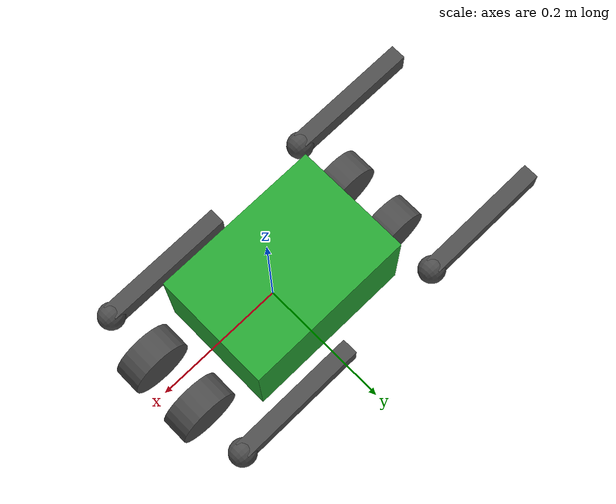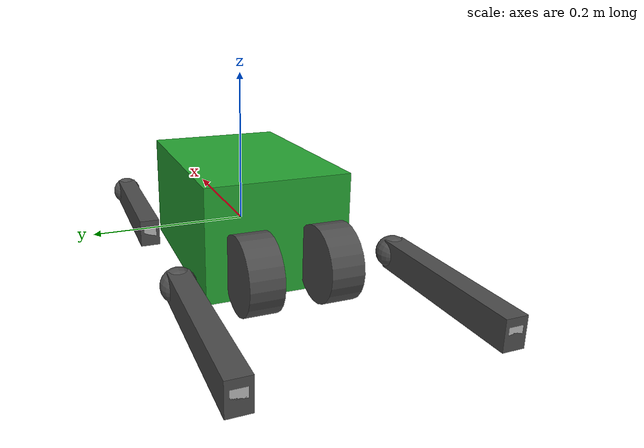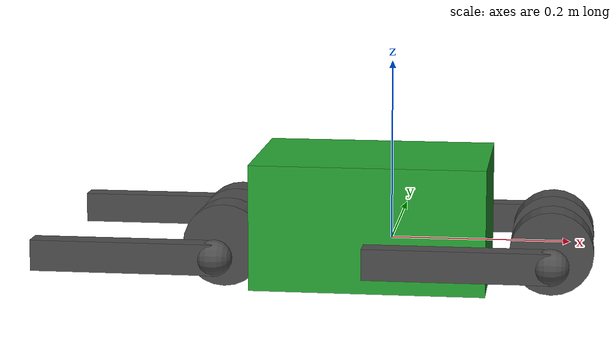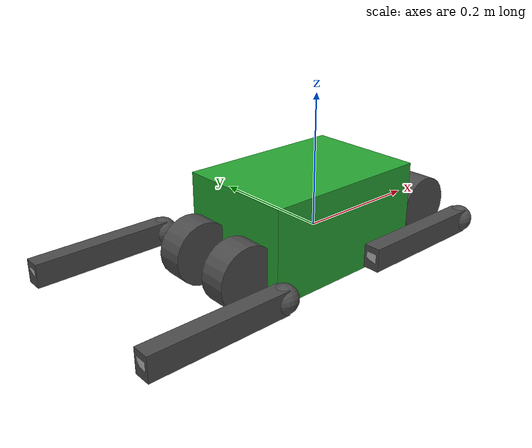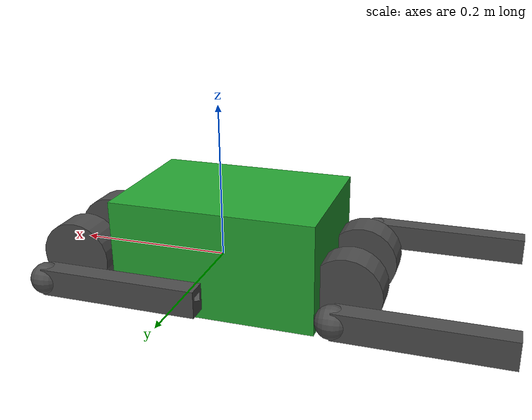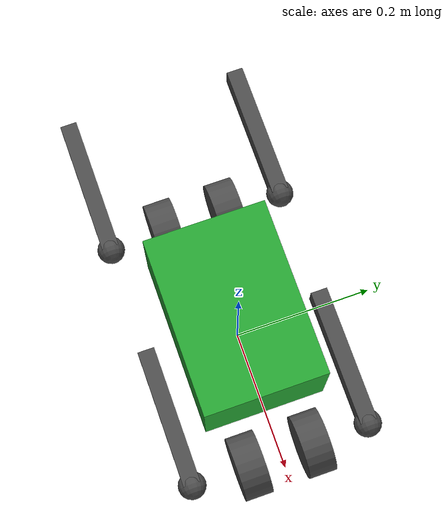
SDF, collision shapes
<sdf version='1.6'>
  <model name='ylo2_description'>
    <link name='body'>
      <inertial>
        <pose>0.0325 0.007369 0.033157 0 -0 0</pose>
        <mass>4.077</mass>
        <inertia>
          <ixx>0.0199227</ixx>
          <ixy>-3.01296e-05</ixy>
          <ixz>-0.000376678</ixz>
          <iyy>0.078297</iyy>
          <iyz>-1.27744e-05</iyz>
          <izz>0.0842236</izz>
        </inertia>
      </inertial>
      <collision name='body_fixed_joint_lump__trunk_collision'>
        <pose>-0.02 0.003 0.024 0 -0 0</pose>
        <geometry>
          <box>
            <size>0.26 0.18 0.14</size>
          </box>
        </geometry>
        <surface>
          <contact>
            <ode>
              <kp>1e+06</kp>
              <kd>1</kd>
            </ode>
          </contact>
          <friction>
            <ode>
              <mu>0.2</mu>
              <mu2>0.2</mu2>
            </ode>
          </friction>
        </surface>
      </collision>
      <collision name='body_fixed_joint_lump__imu_link_collision_1'>
        <pose>0 0 0 0 -0 0</pose>
        <geometry>
          <box>
            <size>0.001 0.001 0.001</size>
          </box>
        </geometry>
        <surface>
          <contact>
            <ode/>
          </contact>
          <friction>
            <ode>
              <mu>0.2</mu>
              <mu2>0.2</mu2>
            </ode>
          </friction>
        </surface>
      </collision>
      <visual name='body_visual'>
        <pose>0 0 0 0 -0 0</pose>
        <geometry>
          <box>
            <size>0.001 0.001 0.001</size>
          </box>
        </geometry>
        <material>
          <script>
            <name>Gazebo/Green</name>
            <uri>file://media/materials/scripts/gazebo.material</uri>
          </script>
        </material>
      </visual>
      <visual name='body_visual_visual_1'>
        <pose>0 0 0 0 -0 0</pose>
        <geometry>
          <mesh>
            <scale>1 1 1</scale>
            <uri>model://ylo2_description/meshes/body/textured/ylo2_textured_body.dae</uri>
          </mesh>
        </geometry>
        <material>
          <script>
            <name>Gazebo/Green</name>
            <uri>file://media/materials/scripts/gazebo.material</uri>
          </script>
        </material>
      </visual>
      <visual name='body_fixed_joint_lump__abad_motors_visual_2'>
        <pose>0 0 0 0 -0 0</pose>
        <geometry>
          <mesh>
            <scale>1 1 1</scale>
            <uri>model://ylo2_description/meshes/body/textured/ylo2_textured_abad_motors.dae</uri>
          </mesh>
        </geometry>
      </visual>
      <visual name='body_fixed_joint_lump__accessories_visual_3'>
        <pose>0 0 0 0 -0 0</pose>
        <geometry>
          <mesh>
            <scale>1 1 1</scale>
            <uri>model://ylo2_description/meshes/body/textured/accessories.dae</uri>
          </mesh>
        </geometry>
      </visual>
      <visual name='body_fixed_joint_lump__battery_visual_4'>
        <pose>0 0 0 0 -0 0</pose>
        <geometry>
          <mesh>
            <scale>1 1 1</scale>
            <uri>model://ylo2_description/meshes/body/battery.stl</uri>
          </mesh>
        </geometry>
      </visual>
      <visual name='body_fixed_joint_lump__covers_visual_5'>
        <pose>0 0 0 0 -0 0</pose>
        <geometry>
          <mesh>
            <scale>1 1 1</scale>
            <uri>model://ylo2_description/meshes/body/textured/ylo2_textured_cover.dae</uri>
          </mesh>
        </geometry>
      </visual>
      <visual name='body_fixed_joint_lump__d435_visual_6'>
        <pose>0 0.003 0 0 -0 0</pose>
        <geometry>
          <mesh>
            <scale>1 1 1</scale>
            <uri>model://ylo2_description/meshes/body/textured/ylo2_d435_textured.dae</uri>
          </mesh>
        </geometry>
      </visual>
      <visual name='body_fixed_joint_lump__imu_link_visual_7'>
        <pose>0 0 0 0 -0 0</pose>
        <geometry>
          <box>
            <size>0.001 0.001 0.001</size>
          </box>
        </geometry>
        <material>
          <script>
            <name>Gazebo/Red</name>
            <uri>file://media/materials/scripts/gazebo.material</uri>
          </script>
        </material>
      </visual>
      <visual name='body_fixed_joint_lump__t265_visual_8'>
        <pose>0.002 0.0025 0 0 -0 0</pose>
        <geometry>
          <mesh>
            <scale>1 1.06 1.04</scale>
            <uri>model://ylo2_description/meshes/body/textured/ylo2_t265_textured.dae</uri>
          </mesh>
        </geometry>
      </visual>
      <gravity>1</gravity>
      <gravity>1</gravity>
      <sensor name='imu_sensor' type='imu'>
        <always_on>1</always_on>
        <update_rate>1000</update_rate>
        <visualize>1</visualize>
        <topic>__default_topic__</topic>
        <plugin name='imu_plugin' filename='libgazebo_ros_imu_sensor.so'>
          <topicName>trunk_imu</topicName>
          <bodyName>imu_link</bodyName>
          <updateRateHZ>1000.0</updateRateHZ>
          <gaussianNoise>0.0</gaussianNoise>
          <xyzOffset>0 0 0</xyzOffset>
          <rpyOffset>0 0 0</rpyOffset>
          <frameName>imu_link</frameName>
        </plugin>
        <pose>0 0 0 0 -0 0</pose>
      </sensor>
    </link>

    <link name='hip2'>
      <pose frame=''>0.1805 -0.047 0 0 -0 0</pose>
      <inertial>
        <pose frame=''>-0.011957 0.000306 0.000366 0 -0 0</pose>
        <mass>0.599</mass>
        <inertia>
          <ixx>0.0004159</ixx>
          <ixy>0.000004253</ixy>
          <ixz>0.000000368</ixz>
          <iyy>0.0007108</iyy>
          <iyz>0.000000215</iyz>
          <izz>0.0004707</izz>
        </inertia>
      </inertial>
      <collision name='hip2_collision_collision'>
        <pose frame=''>0 0 0 1.5708 -0 0</pose>
        <geometry>
          <cylinder>
            <length>0.04</length>
            <radius>0.046</radius>
          </cylinder>
        </geometry>
        <surface>
          <contact>
            <ode/>
          </contact>
          <friction>
            <ode>
              <mu>0.5</mu>
              <mu2>0.5</mu2>
            </ode>
          </friction>
        </surface>
      </collision>
      <visual name='hip2_visual_visual'>
        <pose frame=''>0 0 0 -3.14159 -0 0</pose>
        <geometry>
          <mesh>
            <scale>1 1 1</scale>
            <uri>model://ylo2_description/meshes/leg/textured/ylo2texturedhip.dae</uri>
          </mesh>
        </geometry>
        <material>
          <script>
            <name>Gazebo/DarkGrey</name>
            <uri>file://media/materials/scripts/gazebo.material</uri>
          </script>
        </material>
      </visual>
      <gravity>1</gravity>
      <velocity_decay/>
    </link>

    <joint name='10' type='revolute'>
      <child>hip2</child>
      <parent>body</parent>
      <axis>
        <xyz>1 0 0</xyz>
        <limit>
          <lower>-0.802851</lower>
          <upper>0.802851</upper>
          <effort>33.5</effort>
          <velocity>21</velocity>
        </limit>
        <dynamics>
          <damping>0</damping>
          <friction>0</friction>
          <spring_reference>0</spring_reference>
          <spring_stiffness>0</spring_stiffness>
        </dynamics>
        <use_parent_model_frame>0</use_parent_model_frame>
      </axis>
    </joint>

    <link name='upper2'>
      <pose frame=''>0.1805 -0.1308 0 3.14159 1.57079 3.14159</pose>
      <inertial>
        <pose frame=''>-0.000684 -0.010999 -0.035487 0 -0 0</pose>
        <mass>1.080</mass>
        <inertia>
          <ixx>0.005666803</ixx>
          <ixy>0.000003597</ixy>
          <ixz>0.000491446</ixz>
          <iyy>0.005847229</iyy>
          <iyz>0.000010086</iyz>
          <izz>0.000369811</izz>
        </inertia>
      </inertial>
      <collision name='upper2_collision_collision'>
        <pose frame=''>0 0 -0.1 3.14159 1.57079 3.14159</pose>
        <geometry>
          <box>
            <size>0.2 0.0245 0.034</size>
          </box>
        </geometry>
        <surface>
          <contact>
            <ode>
              <kp>1e+06</kp>
              <kd>1</kd>
            </ode>
          </contact>
          <friction>
            <ode>
              <mu>0.5</mu>
              <mu2>0.5</mu2>
            </ode>
          </friction>
        </surface>
      </collision>
      <visual name='upper2_visual_visual'>
        <pose frame=''>0 0 0 0 -0 0</pose>
        <geometry>
          <mesh>
            <scale>1 1 1</scale>
            <uri>model://ylo2_description/meshes/leg/textured/ylo2_textured_upper_leg.dae</uri>
          </mesh>
        </geometry>
        <material>
          <script>
            <name>Gazebo/DarkGrey</name>
            <uri>file://media/materials/scripts/gazebo.material</uri>
          </script>
        </material>
      </visual>
      <gravity>1</gravity>
      <velocity_decay/>
      <self_collide>0</self_collide>
    </link>

    <joint name='4' type='revolute'>
      <child>upper2</child>
      <parent>hip2</parent>
      <axis>
        <xyz>0 -1 0</xyz>
        <limit>
          <lower>-6.28319</lower>
          <upper>6.28319</upper>
          <effort>33.5</effort>
          <velocity>21</velocity>
        </limit>
        <dynamics>
          <damping>0</damping>
          <friction>0</friction>
          <spring_reference>0</spring_reference>
          <spring_stiffness>0</spring_stiffness>
        </dynamics>
        <use_parent_model_frame>0</use_parent_model_frame>
      </axis>
    </joint>

    <link name='lower2'>
      <pose frame=''>-0.0195 -0.1308 -0 3.14159 -1.57079 3.14159</pose>
      <inertial>
        <pose frame=''>0.000252 0.000194 -0.05192 0 -0 0</pose>
        <mass>0.265</mass>
        <inertia>
          <ixx>0.0004583</ixx>
          <ixy>-0.000000095</ixy>
          <ixz>0.000026512</ixz>
          <iyy>0.0004675</iyy>
          <iyz>0.000000277</iyz>
          <izz>0.000029145</izz>
        </inertia>
      </inertial>
      <collision name='lower2_collision_collision'>
        <pose frame=''>0 0 -0.1 3.14159 1.57079 3.14159</pose>
        <geometry>
          <box>
            <size>0.2 0.016 0.016</size>
          </box>
        </geometry>
        <surface>
          <contact>
            <ode/>
          </contact>
          <friction>
            <ode>
              <mu>0.5</mu>
              <mu2>0.5</mu2>
            </ode>
          </friction>
        </surface>
      </collision>
      <visual name='lower2_visual_visual'>
        <pose frame=''>0 0 0 0 -0 0</pose>
        <geometry>
          <mesh>
            <scale>1 1 1</scale>
            <uri>model://ylo2_description/meshes/leg/fl_lower_leg_collision.stl</uri>
          </mesh>
        </geometry>
        <material>
          <script>
            <uri>__default__</uri>
            <name>__default__</name>
          </script>
        </material>
      </visual>
      <gravity>1</gravity>
      <velocity_decay/>
      <self_collide>0</self_collide>
    </link>

    <joint name='5' type='revolute'>
      <child>lower2</child>
      <parent>upper2</parent>
      <axis>
        <xyz>0 1 0</xyz>
        <limit>
          <lower>-6.28319</lower>
          <upper>6.28319</upper>
          <effort>33.5</effort>
          <velocity>21</velocity>
        </limit>
        <dynamics>
          <damping>0</damping>
          <friction>0</friction>
          <spring_reference>0</spring_reference>
          <spring_stiffness>0</spring_stiffness>
        </dynamics>
        <use_parent_model_frame>0</use_parent_model_frame>
      </axis>
    </joint>

    <link name='toe2'>
      <pose frame=''>0.1805 -0.1308 0 3.14159 -1.57079 3.14159</pose>
      <inertial>
        <pose frame=''>-0.007246 0.000092 -0.038267 0 -0 0</pose>
        <mass>0.078</mass>
        <inertia>
          <ixx>0.000029902</ixx>
          <ixy>-0.000000022</ixy>
          <ixz>-0.000004427</ixz>
          <iyy>0.000030583</iyy>
          <iyz>-0.000000099</iyz>
          <izz>0.000014025</izz>
        </inertia>
      </inertial>
      <collision name='toe2_collision_collision'>
        <pose frame=''>0 0 0 0 -0 0</pose>
        <geometry>
          <sphere>
            <radius>0.02</radius>
          </sphere>
        </geometry>
        <surface>
          <contact>
            <ode>
              <kp>1e+06</kp>
              <kd>1</kd>
            </ode>
          </contact>
          <friction>
            <ode>
              <mu>0.6</mu>
              <mu2>0.6</mu2>
            </ode>
          </friction>
        </surface>
      </collision>
      <visual name='toe2_visual_visual'>
        <pose frame=''>0 0 0 0 -0 0</pose>
        <geometry>
          <sphere>
            <radius>0.01</radius>
          </sphere>
        </geometry>
        <material>
          <script>
            <name>Gazebo/DarkGrey</name>
            <uri>file://media/materials/scripts/gazebo.material</uri>
          </script>
        </material>
      </visual>
      <velocity_decay/>
      <sensor name='toe2_contact' type='contact'>
        <plugin name='toe2_plugin' filename='libgazebo_ros_bumper.so'>
          <alwaysOn>1</alwaysOn>
          <updateRate>500</updateRate>
          <bumperTopicName>gazebo/toe2_contact_state</bumperTopicName>
          <frameName>world</frameName>
        </plugin>
        <contact>
          <collision>toe2_collision</collision>
          <topic>__default_topic__</topic>
        </contact>
        <update_rate>500</update_rate>
      </sensor>
      <gravity>1</gravity>
      <velocity_decay/>
      <self_collide>0</self_collide>
    </link>

    <joint name='jtoe2' type='fixed'>
      <child>toe2</child>
      <parent>lower2</parent>
      <axis>
        <dynamics>
          <spring_reference>0</spring_reference>
          <spring_stiffness>0</spring_stiffness>
        </dynamics>
        <xyz>0 0 1</xyz>
        <use_parent_model_frame>0</use_parent_model_frame>
        <limit>
          <lower>-1e+16</lower>
          <upper>1e+16</upper>
        </limit>
      </axis>
      <physics>
        <ode>
          <limit>
            <cfm>0</cfm>
            <erp>0.2</erp>
          </limit>
        </ode>
      </physics>
    </joint>

    <link name='hip3'>
      <pose frame=''>-0.1805 -0.047 0 0 -0 0</pose>
      <inertial>
        <pose frame=''>-0.011957 0.000306 0.000366 0 -0 0</pose>
        <mass>0.599</mass>
        <inertia>
          <ixx>0.0004159</ixx>
          <ixy>0.000004253</ixy>
          <ixz>0.000000368</ixz>
          <iyy>0.0007108</iyy>
          <iyz>0.000000215</iyz>
          <izz>0.0004707</izz>
        </inertia>
      </inertial>
      <collision name='hip3_collision_collision'>
        <pose frame=''>0 0 0 1.5708 -0 0</pose>
        <geometry>
          <cylinder>
            <length>0.04</length>
            <radius>0.046</radius>
          </cylinder>
        </geometry>
        <surface>
          <contact>
            <ode/>
          </contact>
          <friction>
            <ode>
              <mu>0.5</mu>
              <mu2>0.5</mu2>
            </ode>
          </friction>
        </surface>
      </collision>
      <visual name='hip3_visual_visual'>
        <pose frame=''>0 0 0 0 -0 3.14159</pose>
        <geometry>
          <mesh>
            <scale>1 1 1</scale>
            <uri>model://ylo2_description/meshes/leg/textured/ylo2texturedhip.dae</uri>
          </mesh>
        </geometry>
        <material>
          <script>
            <name>Gazebo/DarkGrey</name>
            <uri>file://media/materials/scripts/gazebo.material</uri>
          </script>
        </material>
      </visual>
      <gravity>1</gravity>
      <velocity_decay/>
    </link>

    <joint name='11' type='revolute'>
      <child>hip3</child>
      <parent>body</parent>
      <axis>
        <xyz>1 0 0</xyz>
        <limit>
          <lower>-0.802851</lower>
          <upper>0.802851</upper>
          <effort>33.5</effort>
          <velocity>21</velocity>
        </limit>
        <dynamics>
          <damping>0</damping>
          <friction>0</friction>
          <spring_reference>0</spring_reference>
          <spring_stiffness>0</spring_stiffness>
        </dynamics>
        <use_parent_model_frame>0</use_parent_model_frame>
      </axis>
    </joint>

    <link name='upper3'>
      <pose frame=''>-0.1805 -0.1308 0 3.14159 1.57079 3.14159</pose>
      <inertial>
        <pose frame=''>-0.000684 -0.010999 -0.035487 0 -0 0</pose>
        <mass>1.080</mass>
        <inertia>
          <ixx>0.005666803</ixx>
          <ixy>0.000003597</ixy>
          <ixz>0.000491446</ixz>
          <iyy>0.005847229</iyy>
          <iyz>0.000010086</iyz>
          <izz>0.000369811</izz>
        </inertia>
      </inertial>
      <collision name='upper3_collision_collision'>
        <pose frame=''>0 0 -0.1 3.14159 1.57079 3.14159</pose>
        <geometry>
          <box>
            <size>0.2 0.0245 0.034</size>
          </box>
        </geometry>
        <surface>
          <contact>
            <ode>
              <kp>1e+06</kp>
              <kd>1</kd>
            </ode>
          </contact>
          <friction>
            <ode>
              <mu>0.5</mu>
              <mu2>0.5</mu2>
            </ode>
          </friction>
        </surface>
      </collision>
      <visual name='upper3_visual_visual'>
        <pose frame=''>0 0 0 0 -0 0</pose>
        <geometry>
          <mesh>
            <scale>1 1 1</scale>
            <uri>model://ylo2_description/meshes/leg/textured/ylo2_textured_upper_leg.dae</uri>
          </mesh>
        </geometry>
        <material>
          <script>
            <name>Gazebo/DarkGrey</name>
            <uri>file://media/materials/scripts/gazebo.material</uri>
          </script>
        </material>
      </visual>
      <gravity>1</gravity>
      <velocity_decay/>
      <self_collide>0</self_collide>
    </link>

    <joint name='6' type='revolute'>
      <child>upper3</child>
      <parent>hip3</parent>
      <axis>
        <xyz>0 -1 0</xyz>
        <limit>
          <lower>-6.28319</lower>
          <upper>6.28319</upper>
          <effort>33.5</effort>
          <velocity>21</velocity>
        </limit>
        <dynamics>
          <damping>0</damping>
          <friction>0</friction>
          <spring_reference>0</spring_reference>
          <spring_stiffness>0</spring_stiffness>
        </dynamics>
        <use_parent_model_frame>0</use_parent_model_frame>
      </axis>
    </joint>

    <link name='lower3'>
      <pose frame=''>-0.3805 -0.1308 -0 3.14159 -1.57079 3.14159</pose>
      <inertial>
        <pose frame=''>0.000252 0.000194 -0.05192 0 -0 0</pose>
        <mass>0.265</mass>
        <inertia>
          <ixx>0.0004583</ixx>
          <ixy>-0.000000095</ixy>
          <ixz>0.000026512</ixz>
          <iyy>0.0004675</iyy>
          <iyz>0.000000277</iyz>
          <izz>0.000029145</izz>
        </inertia>
      </inertial>
      <collision name='lower3_collision_collision'>
        <pose frame=''>0 0 -0.1 3.14159 1.57079 3.14159</pose>
        <geometry>
          <box>
            <size>0.2 0.016 0.016</size>
          </box>
        </geometry>
        <surface>
          <contact>
            <ode/>
          </contact>
          <friction>
            <ode>
              <mu>0.5</mu>
              <mu2>0.5</mu2>
            </ode>
          </friction>
        </surface>
      </collision>
      <visual name='lower3_visual_visual'>
        <pose frame=''>0 0 0 0 -0 0</pose>
        <geometry>
          <mesh>
            <scale>1 1 1</scale>
            <uri>model://ylo2_description/meshes/leg/fl_foot.dae</uri>
          </mesh>
        </geometry>
        <material>
          <script>
            <uri>__default__</uri>
            <name>__default__</name>
          </script>
        </material>
      </visual>
      <gravity>1</gravity>
      <velocity_decay/>
      <self_collide>0</self_collide>
    </link>

    <joint name='7' type='revolute'>
      <child>lower3</child>
      <parent>upper3</parent>
      <axis>
        <xyz>0 1 0</xyz>
        <limit>
          <lower>-6.28319</lower>
          <upper>6.28319</upper>
          <effort>33.5</effort>
          <velocity>21</velocity>
        </limit>
        <dynamics>
          <damping>0</damping>
          <friction>0</friction>
          <spring_reference>0</spring_reference>
          <spring_stiffness>0</spring_stiffness>
        </dynamics>
        <use_parent_model_frame>0</use_parent_model_frame>
      </axis>
    </joint>

    <link name='toe3'>
      <pose frame=''>-0.1805 -0.1308 0 3.14159 -1.57079 3.14159</pose>
      <inertial>
        <pose frame=''>-0.007246 0.000092 -0.038267 0 -0 0</pose>
        <mass>0.078</mass>
        <inertia>
          <ixx>0.000029902</ixx>
          <ixy>-0.000000022</ixy>
          <ixz>-0.000004427</ixz>
          <iyy>0.000030583</iyy>
          <iyz>-0.000000099</iyz>
          <izz>0.000014025</izz>
        </inertia>
      </inertial>
      <collision name='toe3_collision_collision'>
        <pose frame=''>0 0 0 0 -0 0</pose>
        <geometry>
          <sphere>
            <radius>0.02</radius>
          </sphere>
        </geometry>
        <surface>
          <contact>
            <ode>
              <kp>1e+06</kp>
              <kd>1</kd>
            </ode>
          </contact>
          <friction>
            <ode>
              <mu>0.6</mu>
              <mu2>0.6</mu2>
            </ode>
          </friction>
        </surface>
      </collision>
      <visual name='toe3_visual_visual'>
        <pose frame=''>0 0 0 0 -0 0</pose>
        <geometry>
          <sphere>
            <radius>0.01</radius>
          </sphere>
        </geometry>
        <material>
          <script>
            <name>Gazebo/DarkGrey</name>
            <uri>file://media/materials/scripts/gazebo.material</uri>
          </script>
        </material>
      </visual>
      <velocity_decay/>
      <sensor name='toe3_contact' type='contact'>
        <plugin name='toe3_plugin' filename='libgazebo_ros_bumper.so'>
          <alwaysOn>1</alwaysOn>
          <updateRate>500</updateRate>
          <bumperTopicName>gazebo/toe3_contact_state</bumperTopicName>
          <frameName>world</frameName>
        </plugin>
        <contact>
          <collision>toe3_collision</collision>
          <topic>__default_topic__</topic>
        </contact>
        <update_rate>500</update_rate>
      </sensor>
      <gravity>1</gravity>
      <velocity_decay/>
      <self_collide>0</self_collide>
    </link>

    <joint name='jtoe3' type='fixed'>
      <child>toe3</child>
      <parent>lower3</parent>
      <axis>
        <dynamics>
          <spring_reference>0</spring_reference>
          <spring_stiffness>0</spring_stiffness>
        </dynamics>
        <xyz>0 0 1</xyz>
        <use_parent_model_frame>0</use_parent_model_frame>
        <limit>
          <lower>-1e+16</lower>
          <upper>1e+16</upper>
        </limit>
      </axis>
      <physics>
        <ode>
          <limit>
            <cfm>0</cfm>
            <erp>0.2</erp>
          </limit>
        </ode>
      </physics>
    </joint>

    <link name='hip0'>
      <pose frame=''>0.1805 0.047 0 0 -0 0</pose>
      <inertial>
        <pose frame=''>-0.011957 0.000306 0.000366 0 -0 0</pose>
        <mass>0.599</mass>
        <inertia>
          <ixx>0.0004159</ixx>
          <ixy>0.000004253</ixy>
          <ixz>0.000000368</ixz>
          <iyy>0.0007108</iyy>
          <iyz>0.000000215</iyz>
          <izz>0.0004707</izz>
        </inertia>
      </inertial>
      <collision name='hip0_collision_collision'>
        <pose frame=''>0 0 0 1.5708 -0 0</pose>
        <geometry>
          <cylinder>
            <length>0.04</length>
            <radius>0.046</radius>
          </cylinder>
        </geometry>
        <surface>
          <contact>
            <ode/>
          </contact>
          <friction>
            <ode>
              <mu>0.5</mu>
              <mu2>0.5</mu2>
            </ode>
          </friction>
        </surface>
      </collision>
      <visual name='hip0_visual_visual'>
        <pose frame=''>0 0 0 0 -0 0</pose>
        <geometry>
          <mesh>
            <scale>1 1 1</scale>
            <uri>model://ylo2_description/meshes/leg/textured/ylo2texturedhip.dae</uri>
          </mesh>
        </geometry>
        <material>
          <script>
            <name>Gazebo/DarkGrey</name>
            <uri>file://media/materials/scripts/gazebo.material</uri>
          </script>
        </material>
      </visual>
      <gravity>1</gravity>
      <velocity_decay/>
    </link>

    <joint name='8' type='revolute'>
      <child>hip0</child>
      <parent>body</parent>
      <axis>
        <xyz>1 0 0</xyz>
        <limit>
          <lower>-0.802851</lower>
          <upper>0.802851</upper>
          <effort>33.5</effort>
          <velocity>21</velocity>
        </limit>
        <dynamics>
          <damping>0</damping>
          <friction>0</friction>
          <spring_reference>0</spring_reference>
          <spring_stiffness>0</spring_stiffness>
        </dynamics>
        <use_parent_model_frame>0</use_parent_model_frame>
      </axis>
    </joint>

    <link name='upper0'>
      <pose frame=''>0.1805 0.1308 0 3.14159 1.57079 3.14159</pose>
      <inertial>
        <pose frame=''>-0.000684 -0.010999 -0.035487 0 -0 0</pose>
        <mass>1.080</mass>
        <inertia>
          <ixx>0.005666803</ixx>
          <ixy>0.000003597</ixy>
          <ixz>0.000491446</ixz>
          <iyy>0.005847229</iyy>
          <iyz>0.000010086</iyz>
          <izz>0.000369811</izz>
        </inertia>
      </inertial>
      <collision name='upper0_collision_collision'>
        <pose frame=''>0 0 -0.1 3.14159 1.57079 3.14159</pose>
        <geometry>
          <box>
            <size>0.2 0.0245 0.034</size>
          </box>
        </geometry>
        <surface>
          <contact>
            <ode>
              <kp>1e+06</kp>
              <kd>1</kd>
            </ode>
          </contact>
          <friction>
            <ode>
              <mu>0.5</mu>
              <mu2>0.5</mu2>
            </ode>
          </friction>
        </surface>
      </collision>
      <visual name='upper0_visual_visual'>
        <pose frame=''>0 0 0 0 -0 0</pose>
        <geometry>
          <mesh>
            <scale>1 1 1</scale>
            <uri>model://ylo2_description/meshes/leg/textured/ylo2_textured_upper_leg.dae</uri>
          </mesh>
        </geometry>
        <material>
          <script>
            <name>Gazebo/DarkGrey</name>
            <uri>file://media/materials/scripts/gazebo.material</uri>
          </script>
        </material>
      </visual>
      <gravity>1</gravity>
      <velocity_decay/>
      <self_collide>0</self_collide>
    </link>

    <joint name='0' type='revolute'>
      <child>upper0</child>
      <parent>hip0</parent>
      <axis>
        <xyz>0 -1 0</xyz>
        <limit>
          <lower>-6.28319</lower>
          <upper>6.28319</upper>
          <effort>33.5</effort>
          <velocity>21</velocity>
        </limit>
        <dynamics>
          <damping>0</damping>
          <friction>0</friction>
          <spring_reference>0</spring_reference>
          <spring_stiffness>0</spring_stiffness>
        </dynamics>
        <use_parent_model_frame>0</use_parent_model_frame>
      </axis>
    </joint>

    <link name='lower0'>
      <pose frame=''>-0.0195 0.1308 -0 3.14159 -1.57079 3.14159</pose>
      <inertial>
        <pose frame=''>0.000252 0.000194 -0.05192 0 -0 0</pose>
        <mass>0.265</mass>
        <inertia>
          <ixx>0.0004583</ixx>
          <ixy>-0.000000095</ixy>
          <ixz>0.000026512</ixz>
          <iyy>0.0004675</iyy>
          <iyz>0.000000277</iyz>
          <izz>0.000029145</izz>
        </inertia>
      </inertial>
      <collision name='lower0_collision_collision'>
        <pose frame=''>0 0 -0.1 3.14159 1.57079 3.14159</pose>
        <geometry>
          <box>
            <size>0.2 0.016 0.016</size>
          </box>
        </geometry>
        <surface>
          <contact>
            <ode/>
          </contact>
          <friction>
            <ode>
              <mu>0.5</mu>
              <mu2>0.5</mu2>
            </ode>
          </friction>
        </surface>
      </collision>
      <visual name='lower0_visual_visual'>
        <pose frame=''>0 0 0 0 -0 0</pose>
        <geometry>
          <mesh>
            <scale>1 1 1</scale>
            <uri>model://ylo2_description/meshes/leg/fl_foot.dae</uri>
          </mesh>
        </geometry>
        <material>
          <script>
            <uri>__default__</uri>
            <name>__default__</name>
          </script>
        </material>
      </visual>
      <gravity>1</gravity>
      <velocity_decay/>
      <self_collide>0</self_collide>
    </link>

    <joint name='1' type='revolute'>
      <child>lower0</child>
      <parent>upper0</parent>
      <axis>
        <xyz>0 1 0</xyz>
        <limit>
          <lower>-6.28319</lower>
          <upper>6.28319</upper>
          <effort>33.5</effort>
          <velocity>21</velocity>
        </limit>
        <dynamics>
          <damping>0</damping>
          <friction>0</friction>
          <spring_reference>0</spring_reference>
          <spring_stiffness>0</spring_stiffness>
        </dynamics>
        <use_parent_model_frame>0</use_parent_model_frame>
      </axis>
    </joint>

    <link name='toe0'>
      <pose frame=''>0.1805 0.1308 0 3.14159 -1.57079 3.14159</pose>
      <inertial>
        <pose frame=''>-0.007246 0.000092 -0.038267 0 -0 0</pose>
        <mass>0.078</mass>
        <inertia>
          <ixx>0.000029902</ixx>
          <ixy>-0.000000022</ixy>
          <ixz>-0.000004427</ixz>
          <iyy>0.000030583</iyy>
          <iyz>-0.000000099</iyz>
          <izz>0.000014025</izz>
        </inertia>
      </inertial>
      <collision name='toe0_collision_collision'>
        <pose frame=''>0 0 0 0 -0 0</pose>
        <geometry>
          <sphere>
            <radius>0.02</radius>
          </sphere>
        </geometry>
        <surface>
          <contact>
            <ode>
              <kp>1e+06</kp>
              <kd>1</kd>
            </ode>
          </contact>
          <friction>
            <ode>
              <mu>0.6</mu>
              <mu2>0.6</mu2>
            </ode>
          </friction>
        </surface>
      </collision>
      <visual name='toe0_visual_visual'>
        <pose frame=''>0 0 0 0 -0 0</pose>
        <geometry>
          <sphere>
            <radius>0.01</radius>
          </sphere>
        </geometry>
        <material>
          <script>
            <name>Gazebo/DarkGrey</name>
            <uri>file://media/materials/scripts/gazebo.material</uri>
          </script>
        </material>
      </visual>
      <velocity_decay/>
      <sensor name='toe0_contact' type='contact'>
        <plugin name='toe0_plugin' filename='libgazebo_ros_bumper.so'>
          <alwaysOn>1</alwaysOn>
          <updateRate>500</updateRate>
          <bumperTopicName>gazebo/toe0_contact_state</bumperTopicName>
          <frameName>world</frameName>
        </plugin>
        <contact>
          <collision>toe0_collision</collision>
          <topic>__default_topic__</topic>
        </contact>
        <update_rate>500</update_rate>
      </sensor>
      <gravity>1</gravity>
      <velocity_decay/>
      <self_collide>0</self_collide>
    </link>

    <joint name='jtoe0' type='fixed'>
      <child>toe0</child>
      <parent>lower0</parent>
      <axis>
        <dynamics>
          <spring_reference>0</spring_reference>
          <spring_stiffness>0</spring_stiffness>
        </dynamics>
        <xyz>0 0 1</xyz>
        <use_parent_model_frame>0</use_parent_model_frame>
        <limit>
          <lower>-1e+16</lower>
          <upper>1e+16</upper>
        </limit>
      </axis>
      <physics>
        <ode>
          <limit>
            <cfm>0</cfm>
            <erp>0.2</erp>
          </limit>
        </ode>
      </physics>
    </joint>

    <link name='hip1'>
      <pose frame=''>-0.1805 0.047 0 0 -0 0</pose>
      <inertial>
        <pose frame=''>-0.011957 0.000306 0.000366 0 -0 0</pose>
        <mass>0.599</mass>
        <inertia>
          <ixx>0.0004159</ixx>
          <ixy>0.000004253</ixy>
          <ixz>0.000000368</ixz>
          <iyy>0.0007108</iyy>
          <iyz>0.000000215</iyz>
          <izz>0.0004707</izz>
        </inertia>
      </inertial>
      <collision name='hip1_collision_collision'>
        <pose frame=''>0 0 0 1.5708 -0 0</pose>
        <geometry>
          <cylinder>
            <length>0.04</length>
            <radius>0.046</radius>
          </cylinder>
        </geometry>
        <surface>
          <contact>
            <ode/>
          </contact>
          <friction>
            <ode>
              <mu>0.5</mu>
              <mu2>0.5</mu2>
            </ode>
          </friction>
        </surface>
      </collision>
      <visual name='hip1_visual_visual'>
        <pose frame=''>0 0 0 3.14159 -0 3.14159</pose>
        <geometry>
          <mesh>
            <scale>1 1 1</scale>
            <uri>model://ylo2_description/meshes/leg/textured/ylo2texturedhip.dae</uri>
          </mesh>
        </geometry>
        <material>
          <script>
            <name>Gazebo/DarkGrey</name>
            <uri>file://media/materials/scripts/gazebo.material</uri>
          </script>
        </material>
      </visual>
      <gravity>1</gravity>
      <velocity_decay/>
    </link>

    <joint name='9' type='revolute'>
      <child>hip1</child>
      <parent>body</parent>
      <axis>
        <xyz>1 0 0</xyz>
        <limit>
          <lower>-0.802851</lower>
          <upper>0.802851</upper>
          <effort>33.5</effort>
          <velocity>21</velocity>
        </limit>
        <dynamics>
          <damping>0</damping>
          <friction>0</friction>
          <spring_reference>0</spring_reference>
          <spring_stiffness>0</spring_stiffness>
        </dynamics>
        <use_parent_model_frame>0</use_parent_model_frame>
      </axis>
    </joint>

    <link name='upper1'>
      <pose frame=''>-0.1805 0.1308 0 3.14159 1.57079 3.14159</pose>
      <inertial>
        <pose frame=''>-0.000684 -0.010999 -0.035487 0 -0 0</pose>
        <mass>1.080</mass>
        <inertia>
          <ixx>0.005666803</ixx>
          <ixy>0.000003597</ixy>
          <ixz>0.000491446</ixz>
          <iyy>0.005847229</iyy>
          <iyz>0.000010086</iyz>
          <izz>0.000369811</izz>
        </inertia>
      </inertial>
      <collision name='upper1_collision_collision'>
        <pose frame=''>0 0 -0.1 3.14159 1.57079 3.14159</pose>
        <geometry>
          <box>
            <size>0.2 0.0245 0.034</size>
          </box>
        </geometry>
        <surface>
          <contact>
            <ode>
              <kp>1e+06</kp>
              <kd>1</kd>
            </ode>
          </contact>
          <friction>
            <ode>
              <mu>0.5</mu>
              <mu2>0.5</mu2>
            </ode>
          </friction>
        </surface>
      </collision>
      <visual name='upper1_visual_visual'>
        <pose frame=''>0 0 0 0 -0 0</pose>
        <geometry>
          <mesh>
            <scale>1 1 1</scale>
            <uri>model://ylo2_description/meshes/leg/textured/ylo2_textured_upper_leg.dae</uri>
          </mesh>
        </geometry>
        <material>
          <script>
            <name>Gazebo/DarkGrey</name>
            <uri>file://media/materials/scripts/gazebo.material</uri>
          </script>
        </material>
      </visual>
      <gravity>1</gravity>
      <velocity_decay/>
      <self_collide>0</self_collide>
    </link>

    <joint name='2' type='revolute'>
      <child>upper1</child>
      <parent>hip1</parent>
      <axis>
        <xyz>0 -1 0</xyz>
        <limit>
          <lower>-6.28319</lower>
          <upper>6.28319</upper>
          <effort>33.5</effort>
          <velocity>21</velocity>
        </limit>
        <dynamics>
          <damping>0</damping>
          <friction>0</friction>
          <spring_reference>0</spring_reference>
          <spring_stiffness>0</spring_stiffness>
        </dynamics>
        <use_parent_model_frame>0</use_parent_model_frame>
      </axis>
    </joint>

    <link name='lower1'>
      <pose frame=''>-0.3805 0.1308 -0 3.14159 -1.57079 3.14159</pose>
      <inertial>
        <pose frame=''>0.000252 0.000194 -0.05192 0 -0 0</pose>
        <mass>0.265</mass>
        <inertia>
          <ixx>0.0004583</ixx>
          <ixy>-0.000000095</ixy>
          <ixz>0.000026512</ixz>
          <iyy>0.0004675</iyy>
          <iyz>0.000000277</iyz>
          <izz>0.000029145</izz>
        </inertia>
      </inertial>
      <collision name='lower1_collision_collision'>
        <pose frame=''>0 0 -0.1 3.14159 1.57079 3.14159</pose>
        <geometry>
          <box>
            <size>0.2 0.016 0.016</size>
          </box>
        </geometry>
        <surface>
          <contact>
            <ode/>
          </contact>
          <friction>
            <ode>
              <mu>0.5</mu>
              <mu2>0.5</mu2>
            </ode>
          </friction>
        </surface>
      </collision>
      <visual name='lower1_visual_visual'>
        <pose frame=''>0 0 0 0 -0 0</pose>
        <geometry>
          <mesh>
            <scale>1 1 1</scale>
            <uri>model://ylo2_description/meshes/leg/fl_foot.dae</uri>
          </mesh>
        </geometry>
        <material>
          <script>
            <uri>__default__</uri>
            <name>__default__</name>
          </script>
        </material>
      </visual>
      <gravity>1</gravity>
      <velocity_decay/>
      <self_collide>0</self_collide>
    </link>

    <joint name='3' type='revolute'>
      <child>lower1</child>
      <parent>upper1</parent>
      <axis>
        <xyz>0 1 0</xyz>
        <limit>
          <lower>-6.28319</lower>
          <upper>6.28319</upper>
          <effort>33.5</effort>
          <velocity>21</velocity>
        </limit>
        <dynamics>
          <damping>0</damping>
          <friction>0</friction>
          <spring_reference>0</spring_reference>
          <spring_stiffness>0</spring_stiffness>
        </dynamics>
        <use_parent_model_frame>0</use_parent_model_frame>
      </axis>
    </joint>

    <link name='toe1'>
      <pose frame=''>-0.1805 0.1308 0 3.14159 -1.57079 3.14159</pose>
      <inertial>
        <pose frame=''>-0.007246 0.000092 -0.038267 0 -0 0</pose>
        <mass>0.078</mass>
        <inertia>
          <ixx>0.000029902</ixx>
          <ixy>-0.000000022</ixy>
          <ixz>-0.000004427</ixz>
          <iyy>0.000030583</iyy>
          <iyz>-0.000000099</iyz>
          <izz>0.000014025</izz>
        </inertia>
      </inertial>
      <collision name='toe1_collision_collision'>
        <pose frame=''>0 0 0 0 -0 0</pose>
        <geometry>
          <sphere>
            <radius>0.02</radius>
          </sphere>
        </geometry>
        <surface>
          <contact>
            <ode>
              <kp>1e+06</kp>
              <kd>1</kd>
            </ode>
          </contact>
          <friction>
            <ode>
              <mu>0.6</mu>
              <mu2>0.6</mu2>
            </ode>
          </friction>
        </surface>
      </collision>
      <visual name='toe1_visual_visual'>
        <pose frame=''>0 0 0 0 -0 0</pose>
        <geometry>
          <sphere>
            <radius>0.01</radius>
          </sphere>
        </geometry>
        <material>
          <script>
            <name>Gazebo/DarkGrey</name>
            <uri>file://media/materials/scripts/gazebo.material</uri>
          </script>
        </material>
      </visual>
      <velocity_decay/>
      <sensor name='toe1_contact' type='contact'>
        <plugin name='toe1_plugin' filename='libgazebo_ros_bumper.so'>
          <alwaysOn>1</alwaysOn>
          <updateRate>500</updateRate>
          <bumperTopicName>gazebo/toe1_contact_state</bumperTopicName>
          <frameName>world</frameName>
        </plugin>
        <contact>
          <collision>toe1_collision</collision>
          <topic>__default_topic__</topic>
        </contact>
        <update_rate>500</update_rate>
      </sensor>
      <gravity>1</gravity>
      <velocity_decay/>
      <self_collide>0</self_collide>
    </link>

    <joint name='jtoe1' type='fixed'>
      <child>toe1</child>
      <parent>lower1</parent>
      <axis>
        <dynamics>
          <spring_reference>0</spring_reference>
          <spring_stiffness>0</spring_stiffness>
        </dynamics>
        <xyz>0 0 1</xyz>
        <use_parent_model_frame>0</use_parent_model_frame>
        <limit>
          <lower>-1e+16</lower>
          <upper>1e+16</upper>
        </limit>
      </axis>
      <physics>
        <ode>
          <limit>
            <cfm>0</cfm>
            <erp>0.2</erp>
          </limit>
        </ode>
      </physics>
    </joint>

    <plugin name='gazebo_ros_control' filename='libgazebo_ros_control.so'>
      <robotSimType>gazebo_ros_control/DefaultRobotHWSim</robotSimType>
    </plugin>
    <plugin name='ground_truth_estimator' filename='libground_truth_estimator.so'>
      <updateRateHZ>500.0</updateRateHZ>
    </plugin>
    <static>0</static>
    <plugin name='gazebo_ros_force' filename='libgazebo_ros_force.so'>
      <topicName>/apply_force/trunk</topicName>
      <bodyName>body</bodyName>
      <xyzOffset>0 0 0</xyzOffset>
      <rpyOffset>0 -0 0</rpyOffset>
    </plugin>
  </model>
</sdf>
